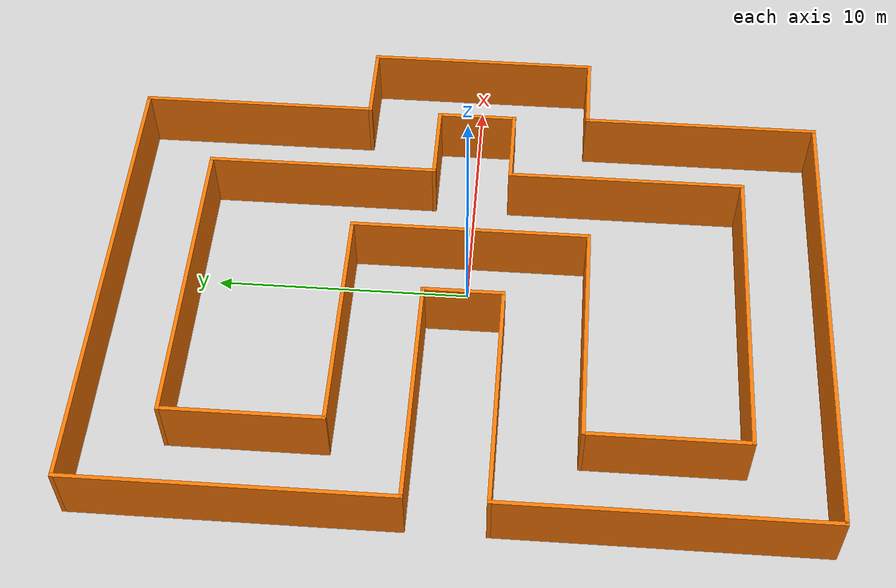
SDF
<sdf version="1.6">
 <world name="default">
  <light name="sun" type="directional">
   <pose>0 0 10 0 -0 0</pose>
   <diffuse>0.8 0.8 0.8 1</diffuse>
   <specular>0.1 0.1 0.1 1</specular>
   <attenuation>
    <range>1000</range>
    <constant>0.9</constant>
    <linear>0.01</linear>
    <quadratic>0.001</quadratic>
   </attenuation>
   <direction>-0.5 0.5 -1</direction>
  </light>
  <model name="ground_plane">
   <static>1</static>
   <link name="link">
    <collision name="collision">
     <geometry><plane><normal>0 0 1</normal><size>100 100</size></plane></geometry>
     <surface><friction><ode><mu>100</mu><mu2>50</mu2></ode></friction></surface>
    </collision>
    <visual name="visual">
     <cast_shadows>0</cast_shadows>
     <geometry><plane><normal>0 0 1</normal><size>100 100</size></plane></geometry>
     <material>
      <script><uri>file://media/materials/scripts/gazebo.material</uri><name>Gazebo/Grey</name></script>
     </material>
    </visual>
   </link>
  </model>
  <gravity>0 0 -9.8</gravity>
  <magnetic_field>6e-06 2.3e-05 -4.2e-05</magnetic_field>
  <atmosphere type="adiabatic"/>
  <physics name="default_physics" default="0" type="ode">
   <max_step_size>0.001</max_step_size>
   <real_time_factor>1</real_time_factor>
   <real_time_update_rate>0.0</real_time_update_rate>
  </physics>
  <scene><ambient>0.4 0.4 0.4 1</ambient><background>0.7 0.7 0.7 1</background><shadows>1</shadows></scene>
  <spherical_coordinates>
   <surface_model>EARTH_WGS84</surface_model>
   <latitude_deg>0</latitude_deg>
   <longitude_deg>0</longitude_deg>
   <elevation>0</elevation>
   <heading_deg>0</heading_deg>
  </spherical_coordinates>
  <model name="track2">
   <pose>0.054572 0.057909 0 0 -0 0</pose>
   <link name="Wall_10">
    <collision name="Wall_10_Collision">
     <geometry><box><size>12.5 0.15 2.5</size></box></geometry>
     <pose>0 0 1.25 0 -0 0</pose>
    </collision>
    <visual name="Wall_10_Visual">
     <pose>0 0 1.25 0 -0 0</pose>
     <geometry><box><size>12.5 0.15 2.5</size></box></geometry>
     <material>
      <script><uri>file://media/materials/scripts/gazebo.material</uri><name>Gazebo/Grey</name></script>
      <ambient>0.996078 0.47451 0.0196078 1</ambient>
     </material>
    </visual>
    <pose>-10.725 -7.725 0 0 0 -1.5708</pose>
   </link>
   <link name="Wall_12">
    <collision name="Wall_12_Collision">
     <geometry><box><size>9.25 0.15 2.5</size></box></geometry>
     <pose>0 0 1.25 0 -0 0</pose>
    </collision>
    <visual name="Wall_12_Visual">
     <pose>0 0 1.25 0 -0 0</pose>
     <geometry><box><size>9.25 0.15 2.5</size></box></geometry>
     <material>
      <script><uri>file://media/materials/scripts/gazebo.material</uri><name>Gazebo/Grey</name></script>
      <ambient>0.996078 0.47451 0.0196078 1</ambient>
     </material>
    </visual>
    <pose>10.725 0 0 0 -0 1.5708</pose>
   </link>
   <link name="Wall_13">
    <collision name="Wall_13_Collision">
     <geometry><box><size>3.25 0.15 2.5</size></box></geometry>
     <pose>0 0 1.25 0 -0 0</pose>
    </collision>
    <visual name="Wall_13_Visual">
     <pose>0 0 1.25 0 -0 0</pose>
     <geometry><box><size>3.25 0.15 2.5</size></box></geometry>
     <material>
      <script><uri>file://media/materials/scripts/gazebo.material</uri><name>Gazebo/Grey</name></script>
      <ambient>0.996078 0.47451 0.0196078 1</ambient>
     </material>
    </visual>
    <pose>9.175 4.55 0 0 -0 3.14159</pose>
   </link>
   <link name="Wall_14">
    <collision name="Wall_14_Collision">
     <geometry><box><size>9.5 0.15 2.5</size></box></geometry>
     <pose>0 0 1.25 0 -0 0</pose>
    </collision>
    <visual name="Wall_14_Visual">
     <pose>0 0 1.25 0 -0 0</pose>
     <geometry><box><size>9.5 0.15 2.5</size></box></geometry>
     <material>
      <script><uri>file://media/materials/scripts/gazebo.material</uri><name>Gazebo/Grey</name></script>
      <ambient>0.996078 0.47451 0.0196078 1</ambient>
     </material>
    </visual>
    <pose>7.625 9.225 0 0 -0 1.5708</pose>
   </link>
   <link name="Wall_17">
    <collision name="Wall_17_Collision">
     <geometry><box><size>18.5 0.15 2.5</size></box></geometry>
     <pose>0 0 1.25 0 -0 0</pose>
    </collision>
    <visual name="Wall_17_Visual">
     <pose>0 0 1.25 0 -0 0</pose>
     <geometry><box><size>18.5 0.15 2.5</size></box></geometry>
     <material>
      <script><uri>file://media/materials/scripts/gazebo.material</uri><name>Gazebo/Grey</name></script>
      <ambient>0.996078 0.47451 0.0196078 1</ambient>
     </material>
    </visual>
    <pose>-1.55 13.9 0 0 -0 3.14159</pose>
   </link>
   <link name="Wall_18">
    <collision name="Wall_18_Collision">
     <geometry><box><size>12.5 0.15 2.5</size></box></geometry>
     <pose>0 0 1.25 0 -0 0</pose>
    </collision>
    <visual name="Wall_18_Visual">
     <pose>0 0 1.25 0 -0 0</pose>
     <geometry><box><size>12.5 0.15 2.5</size></box></geometry>
     <material>
      <script><uri>file://media/materials/scripts/gazebo.material</uri><name>Gazebo/Grey</name></script>
      <ambient>0.996078 0.47451 0.0196078 1</ambient>
     </material>
    </visual>
    <pose>-10.725 7.725 0 0 0 -1.5708</pose>
   </link>
   <link name="Wall_19">
    <collision name="Wall_19_Collision">
     <geometry><box><size>9.25 0.15 2.5</size></box></geometry>
     <pose>0 0 1.25 0 -0 0</pose>
    </collision>
    <visual name="Wall_19_Visual">
     <pose>0 0 1.25 0 -0 0</pose>
     <geometry><box><size>9.25 0.15 2.5</size></box></geometry>
     <material>
      <script><uri>file://media/materials/scripts/gazebo.material</uri><name>Gazebo/Grey</name></script>
      <ambient>0.996078 0.47451 0.0196078 1</ambient>
     </material>
    </visual>
    <pose>-6.175 1.55 0 0 -0 0</pose>
   </link>
   <link name="Wall_2">
    <collision name="Wall_2_Collision">
     <geometry><box><size>3.25 0.15 2.5</size></box></geometry>
     <pose>0 0 1.25 0 -0 0</pose>
    </collision>
    <visual name="Wall_2_Visual">
     <pose>0 0 1.25 0 -0 0</pose>
     <geometry><box><size>3.25 0.15 2.5</size></box></geometry>
     <material>
      <script><uri>file://media/materials/scripts/gazebo.material</uri><name>Gazebo/Grey</name></script>
      <ambient>0.996078 0.47451 0.0196078 1</ambient>
     </material>
    </visual>
    <pose>-1.625 0 0 0 0 -1.5708</pose>
   </link>
   <link name="Wall_23">
    <collision name="Wall_23_Collision">
     <geometry><box><size>9.5 0.15 2.5</size></box></geometry>
     <pose>0 0 1.25 0 -0 0</pose>
    </collision>
    <visual name="Wall_23_Visual">
     <pose>0 0 1.25 0 -0 0</pose>
     <geometry><box><size>9.5 0.15 2.5</size></box></geometry>
     <material>
      <script><uri>file://media/materials/scripts/gazebo.material</uri><name>Gazebo/Grey</name></script>
      <ambient>0.996078 0.47451 0.0196078 1</ambient>
     </material>
    </visual>
    <pose>1.40964 -0.067251 0 0 0 -1.5708</pose>
   </link>
   <link name="Wall_24">
    <collision name="Wall_24_Collision">
     <geometry><box><size>9.25 0.15 2.5</size></box></geometry>
     <pose>0 0 1.25 0 -0 0</pose>
    </collision>
    <visual name="Wall_24_Visual">
     <pose>0 0 1.25 0 -0 0</pose>
     <geometry><box><size>9.25 0.15 2.5</size></box></geometry>
     <material>
      <script><uri>file://media/materials/scripts/gazebo.material</uri><name>Gazebo/Grey</name></script>
      <ambient>0.996078 0.47451 0.0196078 1</ambient>
     </material>
    </visual>
    <pose>-3.14036 -4.74225 0 0 -0 3.14159</pose>
   </link>
   <link name="Wall_25">
    <collision name="Wall_25_Collision">
     <geometry><box><size>6.25 0.15 2.5</size></box></geometry>
     <pose>0 0 1.25 0 -0 0</pose>
    </collision>
    <visual name="Wall_25_Visual">
     <pose>0 0 1.25 0 -0 0</pose>
     <geometry><box><size>6.25 0.15 2.5</size></box></geometry>
     <material>
      <script><uri>file://media/materials/scripts/gazebo.material</uri><name>Gazebo/Grey</name></script>
      <ambient>0.996078 0.47451 0.0196078 1</ambient>
     </material>
    </visual>
    <pose>-7.69036 -7.79225 0 0 0 -1.5708</pose>
   </link>
   <link name="Wall_26">
    <collision name="Wall_26_Collision">
     <geometry><box><size>12.25 0.15 2.5</size></box></geometry>
     <pose>0 0 1.25 0 -0 0</pose>
    </collision>
    <visual name="Wall_26_Visual">
     <pose>0 0 1.25 0 -0 0</pose>
     <geometry><box><size>12.25 0.15 2.5</size></box></geometry>
     <material>
      <script><uri>file://media/materials/scripts/gazebo.material</uri><name>Gazebo/Grey</name></script>
      <ambient>0.996078 0.47451 0.0196078 1</ambient>
     </material>
    </visual>
    <pose>-1.64036 -10.8422 0 0 -0 0</pose>
   </link>
   <link name="Wall_27">
    <collision name="Wall_27_Collision">
     <geometry><box><size>9.5 0.15 2.5</size></box></geometry>
     <pose>0 0 1.25 0 -0 0</pose>
    </collision>
    <visual name="Wall_27_Visual">
     <pose>0 0 1.25 0 -0 0</pose>
     <geometry><box><size>9.5 0.15 2.5</size></box></geometry>
     <material>
      <script><uri>file://media/materials/scripts/gazebo.material</uri><name>Gazebo/Grey</name></script>
      <ambient>0.996078 0.47451 0.0196078 1</ambient>
     </material>
    </visual>
    <pose>4.40964 -6.16725 0 0 -0 1.5708</pose>
   </link>
   <link name="Wall_28">
    <collision name="Wall_28_Collision">
     <geometry><box><size>3.25 0.15 2.5</size></box></geometry>
     <pose>0 0 1.25 0 -0 0</pose>
    </collision>
    <visual name="Wall_28_Visual">
     <pose>0 0 1.25 0 -0 0</pose>
     <geometry><box><size>3.25 0.15 2.5</size></box></geometry>
     <material>
      <script><uri>file://media/materials/scripts/gazebo.material</uri><name>Gazebo/Grey</name></script>
      <ambient>0.996078 0.47451 0.0196078 1</ambient>
     </material>
    </visual>
    <pose>5.95964 -1.49225 0 0 -0 0</pose>
   </link>
   <link name="Wall_3">
    <collision name="Wall_3_Collision">
     <geometry><box><size>9.25 0.15 2.5</size></box></geometry>
     <pose>0 0 1.25 0 -0 0</pose>
    </collision>
    <visual name="Wall_3_Visual">
     <pose>0 0 1.25 0 -0 0</pose>
     <geometry><box><size>9.25 0.15 2.5</size></box></geometry>
     <material>
      <script><uri>file://media/materials/scripts/gazebo.material</uri><name>Gazebo/Grey</name></script>
      <ambient>0.996078 0.47451 0.0196078 1</ambient>
     </material>
    </visual>
    <pose>-6.175 -1.55 0 0 -0 3.14159</pose>
   </link>
   <link name="Wall_34">
    <collision name="Wall_34_Collision">
     <geometry><box><size>3.25 0.15 2.5</size></box></geometry>
     <pose>0 0 1.25 0 -0 0</pose>
    </collision>
    <visual name="Wall_34_Visual">
     <pose>0 0 1.25 0 -0 0</pose>
     <geometry><box><size>3.25 0.15 2.5</size></box></geometry>
     <material>
      <script><uri>file://media/materials/scripts/gazebo.material</uri><name>Gazebo/Grey</name></script>
      <ambient>0.996078 0.47451 0.0196078 1</ambient>
     </material>
    </visual>
    <pose>7.50964 0.057749 0 0 -0 1.5708</pose>
   </link>
   <link name="Wall_41">
    <collision name="Wall_41_Collision">
     <geometry><box><size>3.25 0.15 2.5</size></box></geometry>
     <pose>0 0 1.25 0 -0 0</pose>
    </collision>
    <visual name="Wall_41_Visual">
     <pose>0 0 1.25 0 -0 0</pose>
     <geometry><box><size>3.25 0.15 2.5</size></box></geometry>
     <material>
      <script><uri>file://media/materials/scripts/gazebo.material</uri><name>Gazebo/Grey</name></script>
      <ambient>0.996078 0.47451 0.0196078 1</ambient>
     </material>
    </visual>
    <pose>5.95964 1.60775 0 0 -0 3.14159</pose>
   </link>
   <link name="Wall_42">
    <collision name="Wall_42_Collision">
     <geometry><box><size>9.25 0.15 2.5</size></box></geometry>
     <pose>0 0 1.25 0 -0 0</pose>
    </collision>
    <visual name="Wall_42_Visual">
     <pose>0 0 1.25 0 -0 0</pose>
     <geometry><box><size>9.25 0.15 2.5</size></box></geometry>
     <material>
      <script><uri>file://media/materials/scripts/gazebo.material</uri><name>Gazebo/Grey</name></script>
      <ambient>0.996078 0.47451 0.0196078 1</ambient>
     </material>
    </visual>
    <pose>4.40964 6.15775 0 0 -0 1.5708</pose>
   </link>
   <link name="Wall_43">
    <collision name="Wall_43_Collision">
     <geometry><box><size>12.25 0.15 2.5</size></box></geometry>
     <pose>0 0 1.25 0 -0 0</pose>
    </collision>
    <visual name="Wall_43_Visual">
     <pose>0 0 1.25 0 -0 0</pose>
     <geometry><box><size>12.25 0.15 2.5</size></box></geometry>
     <material>
      <script><uri>file://media/materials/scripts/gazebo.material</uri><name>Gazebo/Grey</name></script>
      <ambient>0.996078 0.47451 0.0196078 1</ambient>
     </material>
    </visual>
    <pose>-1.64036 10.7078 0 0 -0 3.14159</pose>
   </link>
   <link name="Wall_44">
    <collision name="Wall_44_Collision">
     <geometry><box><size>6.25 0.15 2.5</size></box></geometry>
     <pose>0 0 1.25 0 -0 0</pose>
    </collision>
    <visual name="Wall_44_Visual">
     <pose>0 0 1.25 0 -0 0</pose>
     <geometry><box><size>6.25 0.15 2.5</size></box></geometry>
     <material>
      <script><uri>file://media/materials/scripts/gazebo.material</uri><name>Gazebo/Grey</name></script>
      <ambient>0.996078 0.47451 0.0196078 1</ambient>
     </material>
    </visual>
    <pose>-7.69036 7.65775 0 0 0 -1.5708</pose>
   </link>
   <link name="Wall_45">
    <collision name="Wall_45_Collision">
     <geometry><box><size>9.25 0.15 2.5</size></box></geometry>
     <pose>0 0 1.25 0 -0 0</pose>
    </collision>
    <visual name="Wall_45_Visual">
     <pose>0 0 1.25 0 -0 0</pose>
     <geometry><box><size>9.25 0.15 2.5</size></box></geometry>
     <material>
      <script><uri>file://media/materials/scripts/gazebo.material</uri><name>Gazebo/Grey</name></script>
      <ambient>0.996078 0.47451 0.0196078 1</ambient>
     </material>
    </visual>
    <pose>-3.14036 4.60775 0 0 -0 0</pose>
   </link>
   <link name="Wall_5">
    <collision name="Wall_5_Collision">
     <geometry><box><size>18.5 0.15 2.5</size></box></geometry>
     <pose>0 0 1.25 0 -0 0</pose>
    </collision>
    <visual name="Wall_5_Visual">
     <pose>0 0 1.25 0 -0 0</pose>
     <geometry><box><size>18.5 0.15 2.5</size></box></geometry>
     <material>
      <script><uri>file://media/materials/scripts/gazebo.material</uri><name>Gazebo/Grey</name></script>
      <ambient>0.996078 0.47451 0.0196078 1</ambient>
     </material>
    </visual>
    <pose>-1.55 -13.9 0 0 -0 0</pose>
   </link>
   <link name="Wall_6">
    <collision name="Wall_6_Collision">
     <geometry><box><size>9.5 0.15 2.5</size></box></geometry>
     <pose>0 0 1.25 0 -0 0</pose>
    </collision>
    <visual name="Wall_6_Visual">
     <pose>0 0 1.25 0 -0 0</pose>
     <geometry><box><size>9.5 0.15 2.5</size></box></geometry>
     <material>
      <script><uri>file://media/materials/scripts/gazebo.material</uri><name>Gazebo/Grey</name></script>
      <ambient>0.996078 0.47451 0.0196078 1</ambient>
     </material>
    </visual>
    <pose>7.625 -9.225 0 0 -0 1.5708</pose>
   </link>
   <link name="Wall_7">
    <collision name="Wall_7_Collision">
     <geometry><box><size>3.25 0.15 2.5</size></box></geometry>
     <pose>0 0 1.25 0 -0 0</pose>
    </collision>
    <visual name="Wall_7_Visual">
     <pose>0 0 1.25 0 -0 0</pose>
     <geometry><box><size>3.25 0.15 2.5</size></box></geometry>
     <material>
      <script><uri>file://media/materials/scripts/gazebo.material</uri><name>Gazebo/Grey</name></script>
      <ambient>0.996078 0.47451 0.0196078 1</ambient>
     </material>
    </visual>
    <pose>9.175 -4.55 0 0 -0 0</pose>
   </link>
   <static>1</static>
  </model>
 </world>
</sdf>
